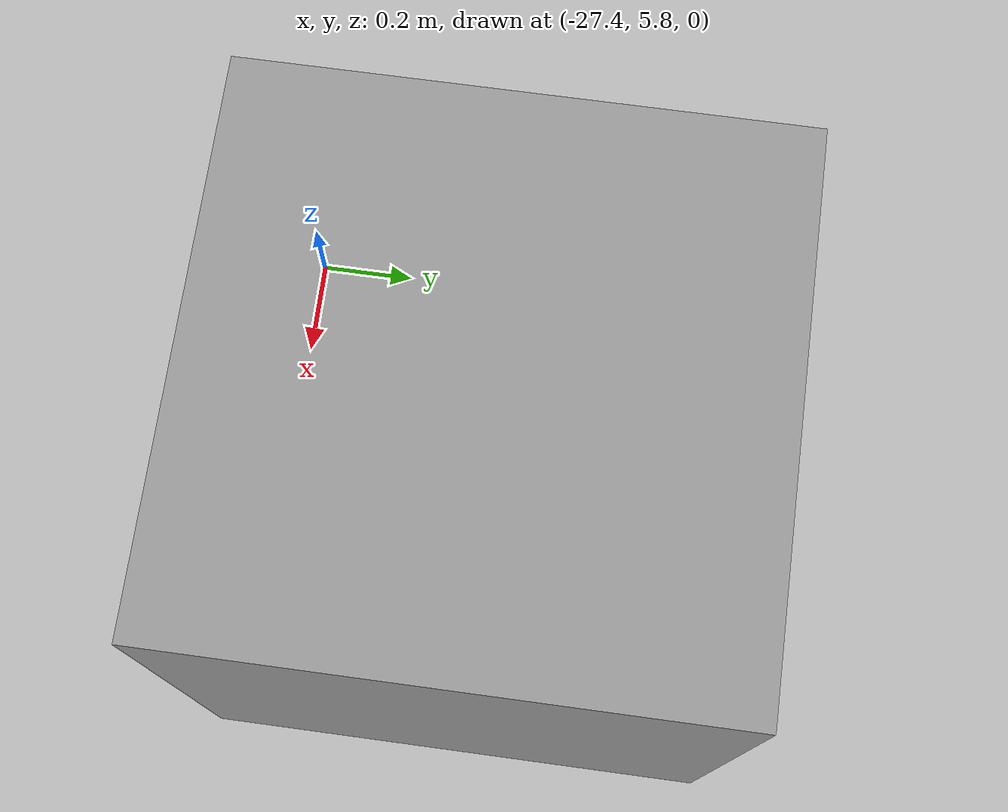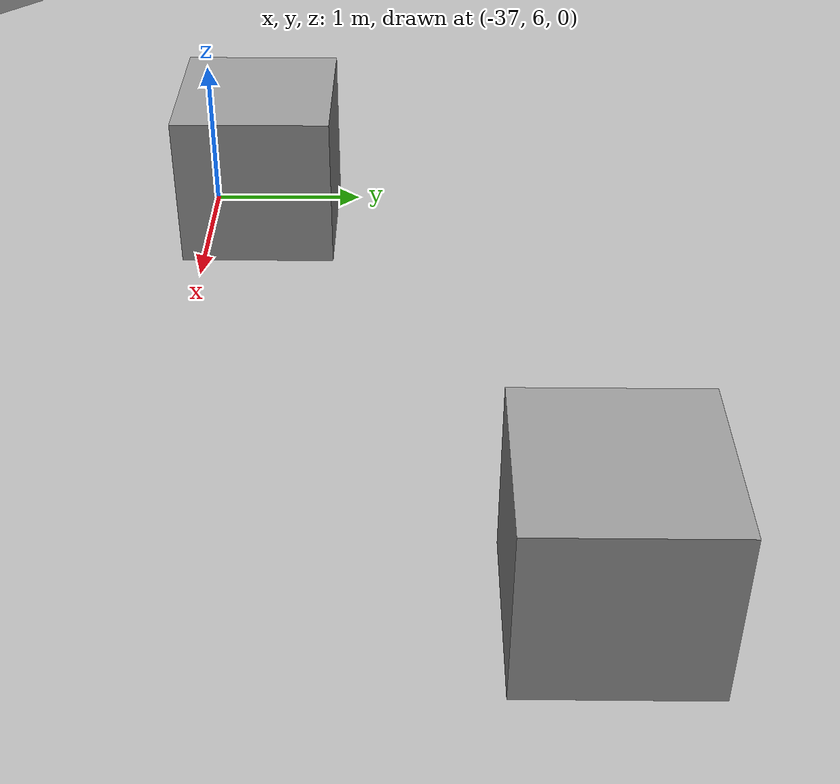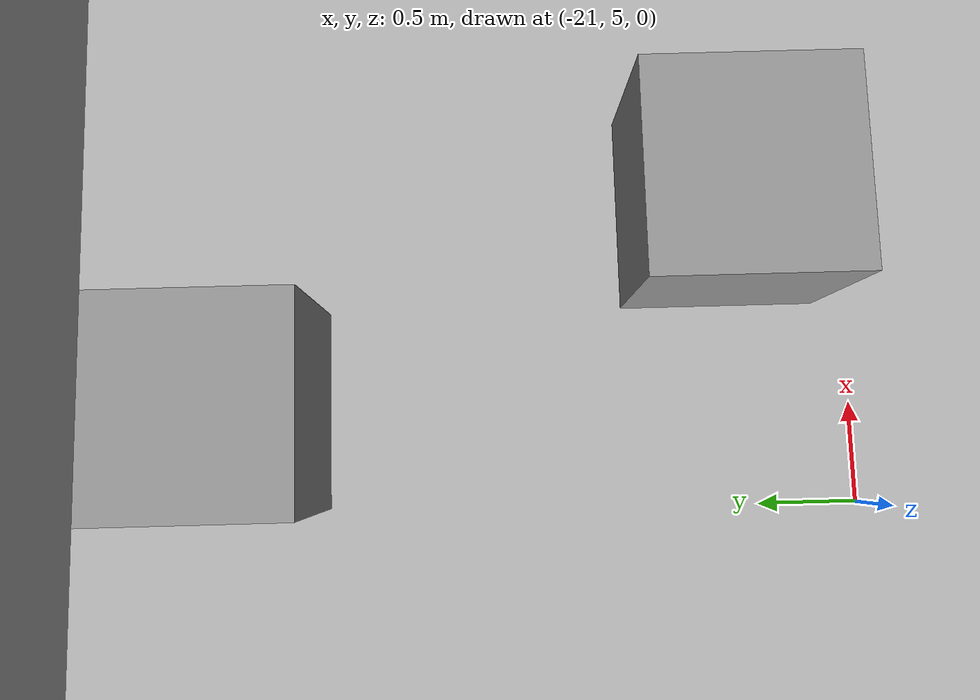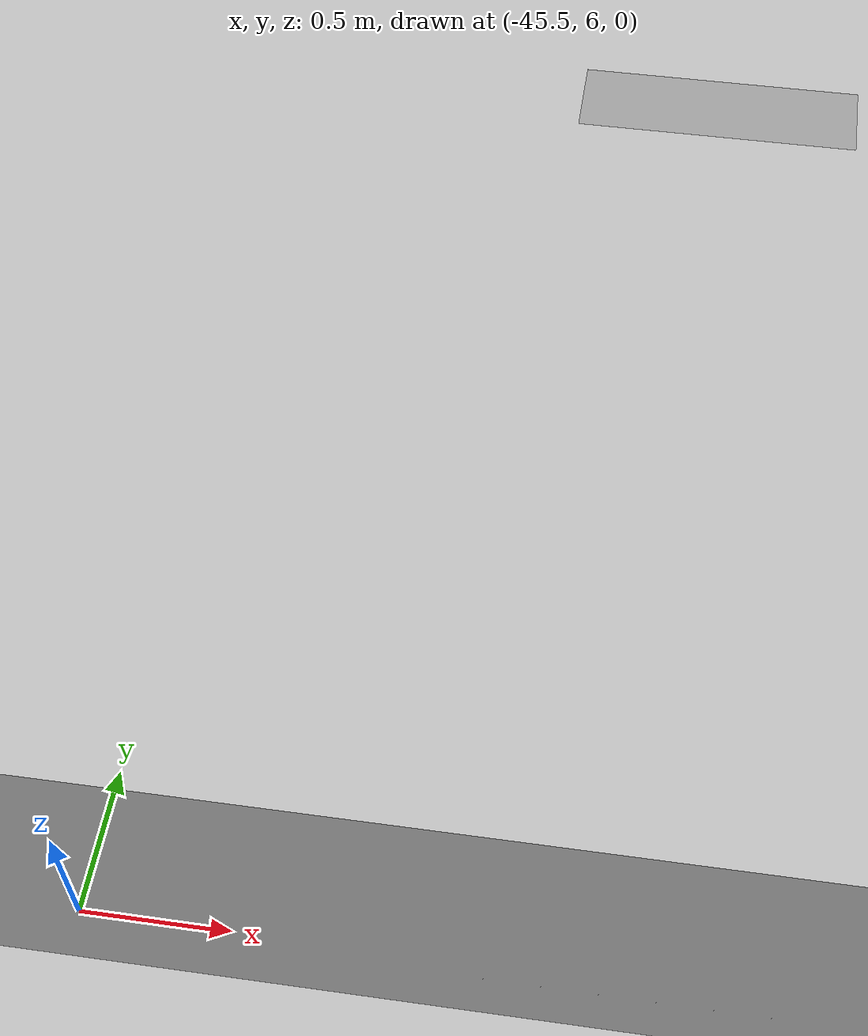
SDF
<sdf version="1.6">
 <world name="default">
  <light name="sun" type="directional">
   <pose>0 0 10 0 -0 0</pose>
   <diffuse>0.8 0.8 0.8 1</diffuse>
   <specular>0.2 0.2 0.2 1</specular>
   <attenuation>
    <range>1000</range>
    <constant>0.9</constant>
    <linear>0.01</linear>
    <quadratic>0.001</quadratic>
   </attenuation>
   <direction>-0.5 0.1 -0.9</direction>
  </light>
  <gravity>0 0 -9.8</gravity>
  <magnetic_field>6e-06 2.3e-05 -4.2e-05</magnetic_field>
  <atmosphere type="adiabatic"/>
  <physics name="default_physics" default="0" type="ode">
   <max_step_size>0.001</max_step_size>
   <real_time_factor>1</real_time_factor>
   <real_time_update_rate>1000</real_time_update_rate>
  </physics>
  <scene><ambient>0.4 0.4 0.4 1</ambient><background>0.7 0.7 0.7 1</background><shadows>1</shadows></scene>
  <spherical_coordinates>
   <surface_model>EARTH_WGS84</surface_model>
   <latitude_deg>0</latitude_deg>
   <longitude_deg>0</longitude_deg>
   <elevation>0</elevation>
   <heading_deg>0</heading_deg>
  </spherical_coordinates>
  <model name="HEB College Station Low Ceiling">
   <static>1</static>
   <link name="link">
    <collision name="collision">
     <geometry>
      <mesh>
       <uri>model://heb_college_station_low_ceiling/meshes/grocery_store_v2_low_ceiling.stl</uri>
       <scale>1 1 1</scale>
      </mesh>
     </geometry>
     <surface><friction><ode><mu>100</mu><mu2>50</mu2></ode></friction></surface>
    </collision>
    <visual name="visual">
     <geometry>
      <mesh>
       <uri>model://heb_college_station_low_ceiling/meshes/grocery_store_v2_low_ceiling.dae</uri>
       <scale>1 1 1</scale>
      </mesh>
     </geometry>
    </visual>
   </link>
   <pose>-21.0602 28.1452 0 0 -0 0</pose>
  </model>
  <model name="unit_box">
   <pose>-44.9369 6.51215 0.499999 0 -0 0</pose>
   <link name="link">
    <inertial>
     <mass>1</mass>
     <inertia>
      <ixx>0.166667</ixx>
      <ixy>0</ixy>
      <ixz>0</ixz>
      <iyy>0.166667</iyy>
      <iyz>0</iyz>
      <izz>0.166667</izz>
     </inertia>
    </inertial>
    <collision name="collision"><geometry><box><size>1 1 1</size></box></geometry></collision>
    <visual name="visual">
     <geometry><box><size>1 1 1</size></box></geometry>
     <material>
      <script><name>Gazebo/Grey</name><uri>file://media/materials/scripts/gazebo.material</uri></script>
     </material>
    </visual>
   </link>
  </model>
  <model name="unit_box_0">
   <pose>-36.6681 6.35989 0.499999 0 -0 0</pose>
   <link name="link">
    <inertial>
     <mass>1</mass>
     <inertia>
      <ixx>0.166667</ixx>
      <ixy>0</ixy>
      <ixz>0</ixz>
      <iyy>0.166667</iyy>
      <iyz>0</iyz>
      <izz>0.166667</izz>
     </inertia>
    </inertial>
    <collision name="collision"><geometry><box><size>1 1 1</size></box></geometry></collision>
    <visual name="visual">
     <geometry><box><size>1 1 1</size></box></geometry>
     <material>
      <script><name>Gazebo/Grey</name><uri>file://media/materials/scripts/gazebo.material</uri></script>
     </material>
    </visual>
   </link>
  </model>
  <model name="unit_box_1">
   <pose>-26.8539 6.24882 0.499999 0 -0 0</pose>
   <link name="link">
    <inertial>
     <mass>1</mass>
     <inertia>
      <ixx>0.166667</ixx>
      <ixy>0</ixy>
      <ixz>0</ixz>
      <iyy>0.166667</iyy>
      <iyz>0</iyz>
      <izz>0.166667</izz>
     </inertia>
    </inertial>
    <collision name="collision"><geometry><box><size>1 1 1</size></box></geometry></collision>
    <visual name="visual">
     <geometry><box><size>1 1 1</size></box></geometry>
     <material>
      <script><name>Gazebo/Grey</name><uri>file://media/materials/scripts/gazebo.material</uri></script>
     </material>
    </visual>
   </link>
  </model>
  <model name="unit_box_2">
   <pose>-43.7476 8.59821 0.499999 0 -0 0</pose>
   <link name="link">
    <inertial>
     <mass>1</mass>
     <inertia>
      <ixx>0.166667</ixx>
      <ixy>0</ixy>
      <ixz>0</ixz>
      <iyy>0.166667</iyy>
      <iyz>0</iyz>
      <izz>0.166667</izz>
     </inertia>
    </inertial>
    <collision name="collision"><geometry><box><size>1 1 1</size></box></geometry></collision>
    <visual name="visual">
     <geometry><box><size>1 1 1</size></box></geometry>
     <material>
      <script><name>Gazebo/Grey</name><uri>file://media/materials/scripts/gazebo.material</uri></script>
     </material>
    </visual>
   </link>
  </model>
  <model name="unit_box_3">
   <pose>-33.0352 8.33269 0.499999 0 -0 0</pose>
   <link name="link">
    <inertial>
     <mass>1</mass>
     <inertia>
      <ixx>0.166667</ixx>
      <ixy>0</ixy>
      <ixz>0</ixz>
      <iyy>0.166667</iyy>
      <iyz>0</iyz>
      <izz>0.166667</izz>
     </inertia>
    </inertial>
    <collision name="collision"><geometry><box><size>1 1 1</size></box></geometry></collision>
    <visual name="visual">
     <geometry><box><size>1 1 1</size></box></geometry>
     <material>
      <script><name>Gazebo/Grey</name><uri>file://media/materials/scripts/gazebo.material</uri></script>
     </material>
    </visual>
   </link>
  </model>
  <model name="unit_box_4">
   <pose>-20.4688 8.17883 0.499999 0 -0 0</pose>
   <link name="link">
    <inertial>
     <mass>1</mass>
     <inertia>
      <ixx>0.166667</ixx>
      <ixy>0</ixy>
      <ixz>0</ixz>
      <iyy>0.166667</iyy>
      <iyz>0</iyz>
      <izz>0.166667</izz>
     </inertia>
    </inertial>
    <collision name="collision"><geometry><box><size>1 1 1</size></box></geometry></collision>
    <visual name="visual">
     <geometry><box><size>1 1 1</size></box></geometry>
     <material>
      <script><name>Gazebo/Grey</name><uri>file://media/materials/scripts/gazebo.material</uri></script>
     </material>
    </visual>
   </link>
  </model>
  <model name="unit_cylinder">
   <pose>-27.7019 8.89691 0.499999 0 -0 4.3e-05</pose>
   <link name="link">
    <inertial>
     <mass>1</mass>
     <inertia><ixx>0.145833</ixx><ixy>0</ixy><ixz>0</ixz><iyy>0.145833</iyy><iyz>0</iyz><izz>0.125</izz></inertia>
    </inertial>
    <collision name="collision">
     <geometry><cylinder><radius>0.5</radius><length>1</length></cylinder></geometry>
    </collision>
    <visual name="visual">
     <geometry><cylinder><radius>0.5</radius><length>1</length></cylinder></geometry>
     <material>
      <script><name>Gazebo/Grey</name><uri>file://media/materials/scripts/gazebo.material</uri></script>
     </material>
    </visual>
   </link>
  </model>
  <model name="unit_box_5">
   <pose>-19.4752 5.65892 0.499999 0 -0 0</pose>
   <link name="link">
    <inertial>
     <mass>1</mass>
     <inertia>
      <ixx>0.166667</ixx>
      <ixy>0</ixy>
      <ixz>0</ixz>
      <iyy>0.166667</iyy>
      <iyz>0</iyz>
      <izz>0.166667</izz>
     </inertia>
    </inertial>
    <collision name="collision"><geometry><box><size>1 1 1</size></box></geometry></collision>
    <visual name="visual">
     <geometry><box><size>1 1 1</size></box></geometry>
     <material>
      <script><name>Gazebo/Grey</name><uri>file://media/materials/scripts/gazebo.material</uri></script>
     </material>
    </visual>
   </link>
  </model>
  <model name="unit_box_6">
   <pose>-24.3483 0.972084 0.499999 0 -0 0</pose>
   <link name="link">
    <inertial>
     <mass>1</mass>
     <inertia>
      <ixx>0.166667</ixx>
      <ixy>0</ixy>
      <ixz>0</ixz>
      <iyy>0.166667</iyy>
      <iyz>0</iyz>
      <izz>0.166667</izz>
     </inertia>
    </inertial>
    <collision name="collision"><geometry><box><size>1 1 1</size></box></geometry></collision>
    <visual name="visual">
     <geometry><box><size>1 1 1</size></box></geometry>
     <material>
      <script><name>Gazebo/Grey</name><uri>file://media/materials/scripts/gazebo.material</uri></script>
     </material>
    </visual>
   </link>
  </model>
  <model name="unit_box_7">
   <pose>-16.3974 0.759157 0.499999 0 -0 0</pose>
   <link name="link">
    <inertial>
     <mass>1</mass>
     <inertia>
      <ixx>0.166667</ixx>
      <ixy>0</ixy>
      <ixz>0</ixz>
      <iyy>0.166667</iyy>
      <iyz>0</iyz>
      <izz>0.166667</izz>
     </inertia>
    </inertial>
    <collision name="collision"><geometry><box><size>1 1 1</size></box></geometry></collision>
    <visual name="visual">
     <geometry><box><size>1 1 1</size></box></geometry>
     <material>
      <script><name>Gazebo/Grey</name><uri>file://media/materials/scripts/gazebo.material</uri></script>
     </material>
    </visual>
   </link>
  </model>
 </world>
</sdf>
